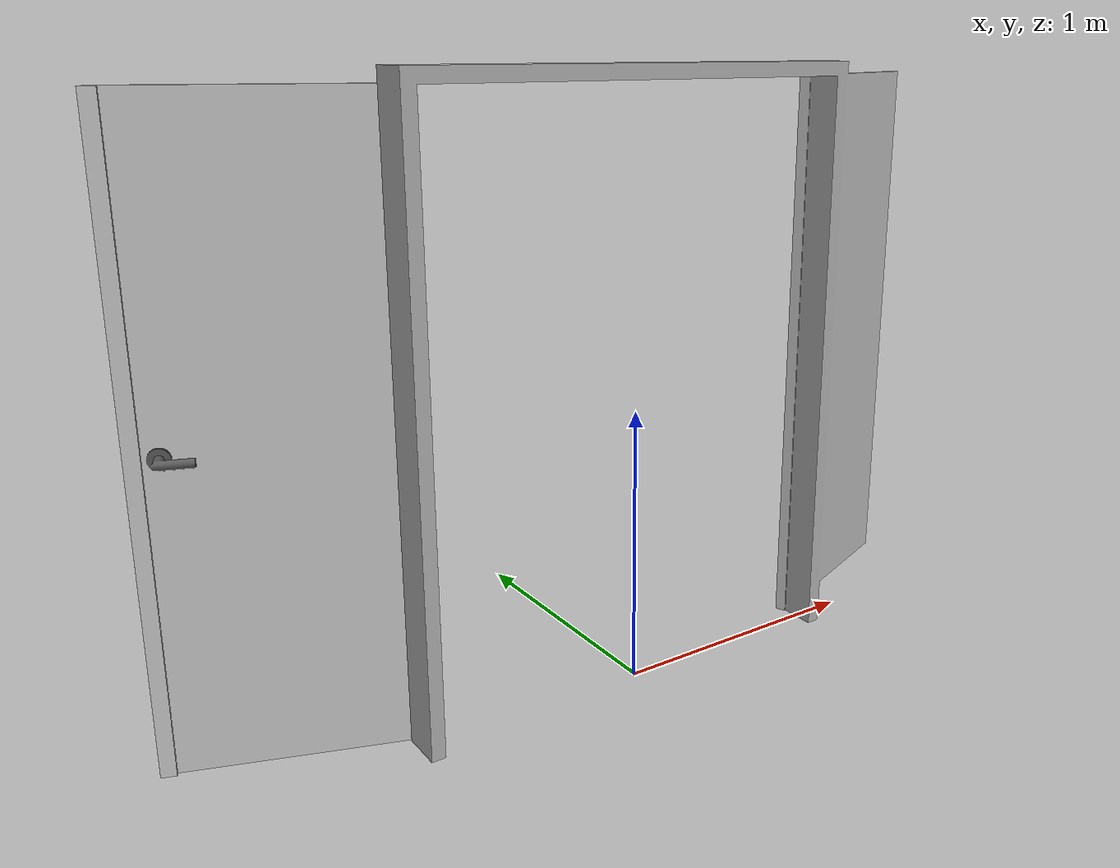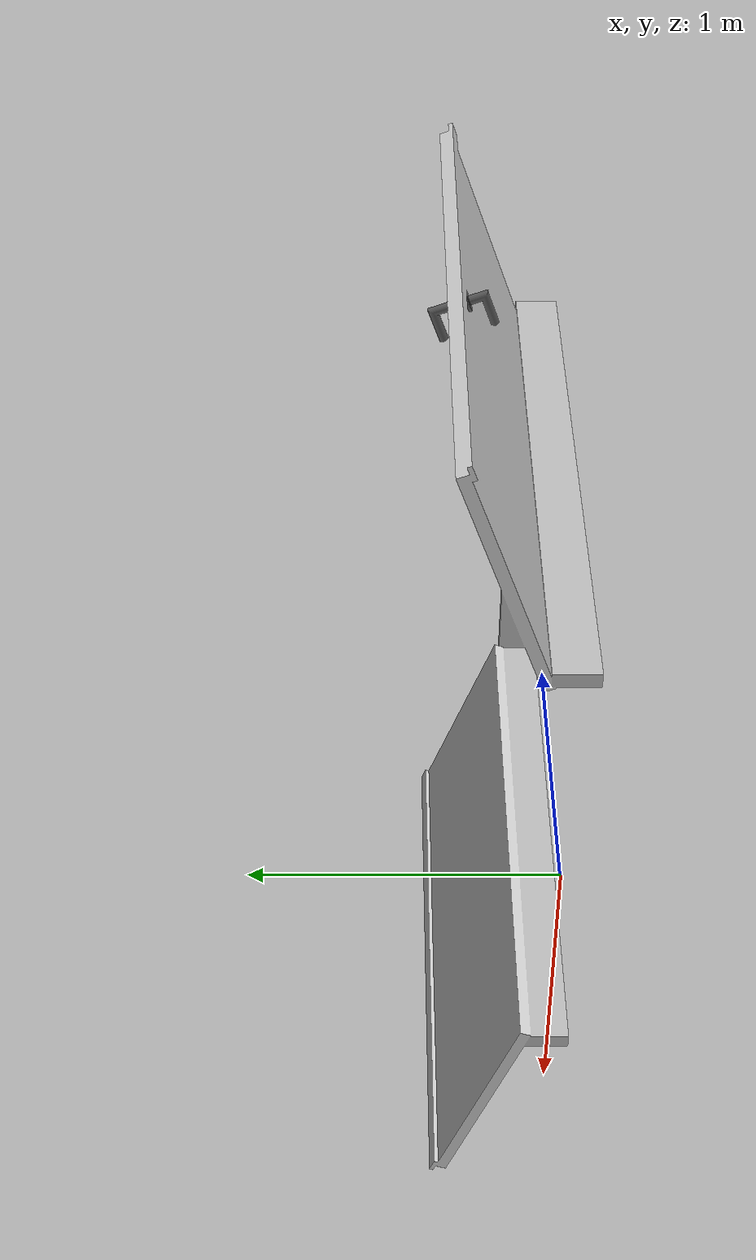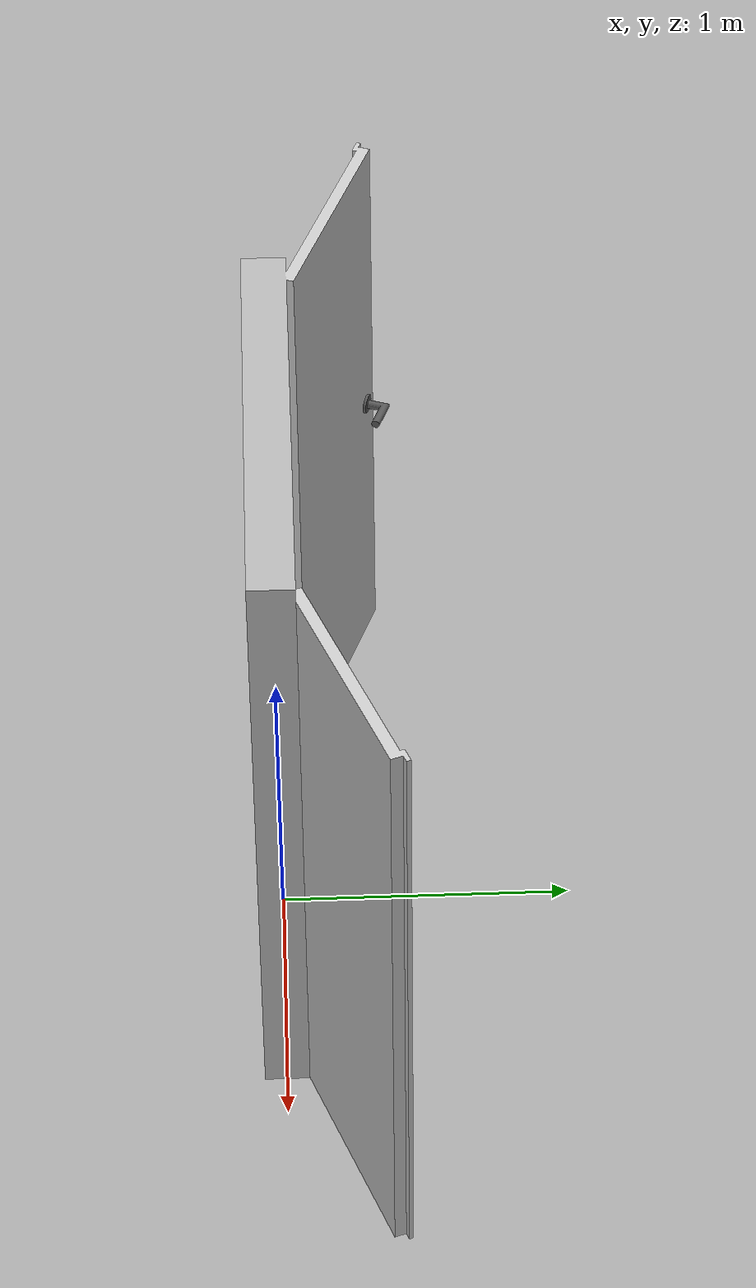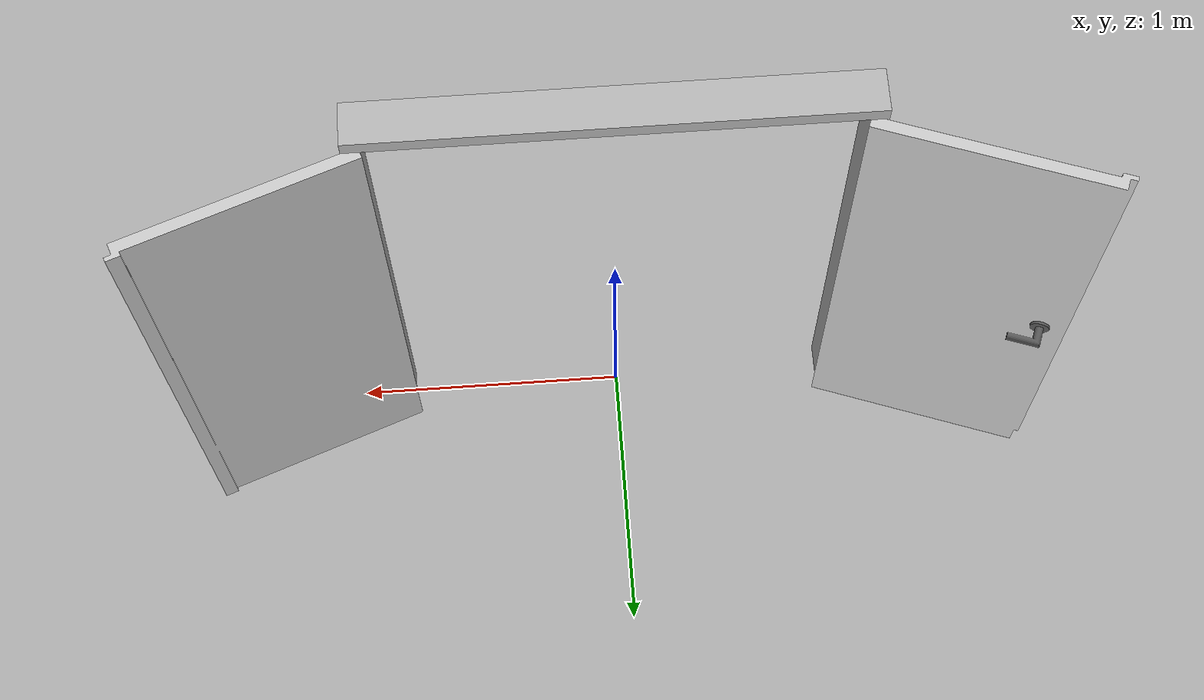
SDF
<?xml version="1.0"?>

<sdf version="1.6">
  <model name='door_160_metal_fully_open'>
    <static>true</static>
    <link name="body">

        <visual name="visual">
          <geometry>
            <mesh><uri>model://models/door_160_metal_fully_open/meshes/door_160_metal_fully_open.dae</uri></mesh>
          </geometry>
        </visual>

        <collision name="collision">
          <geometry>
            <mesh><uri>model://models/door_160_metal_fully_open/meshes/door_160_metal_fully_open.dae</uri></mesh>
          </geometry>
        </collision>

    </link>
  </model>
</sdf>
